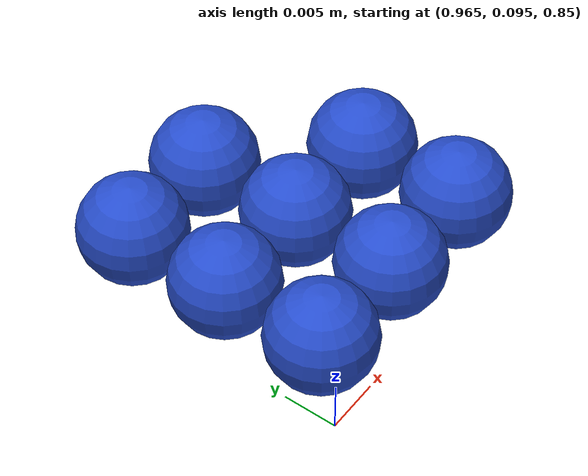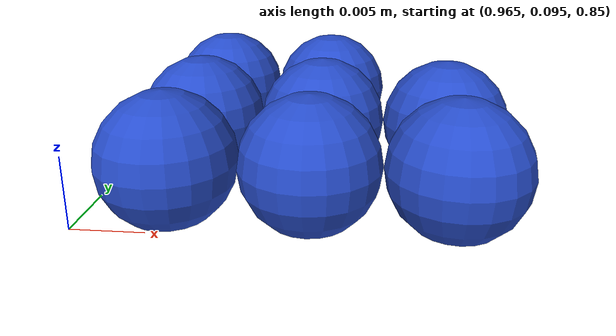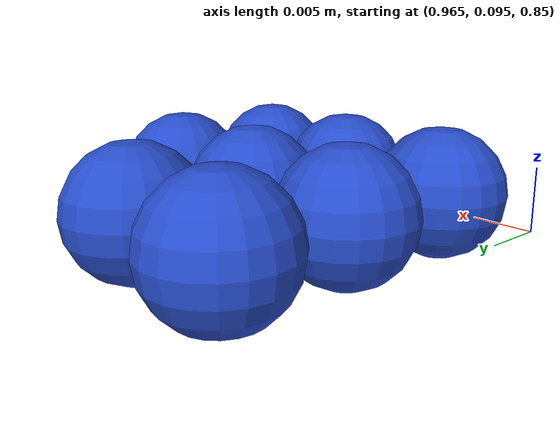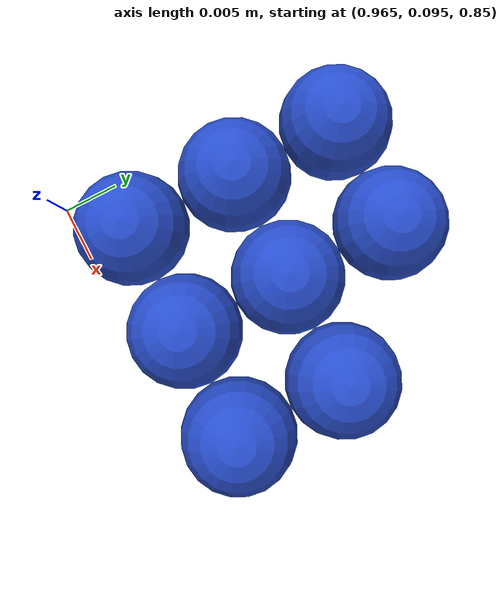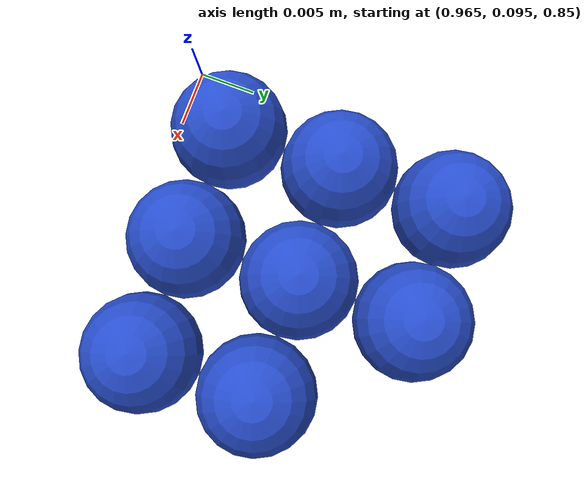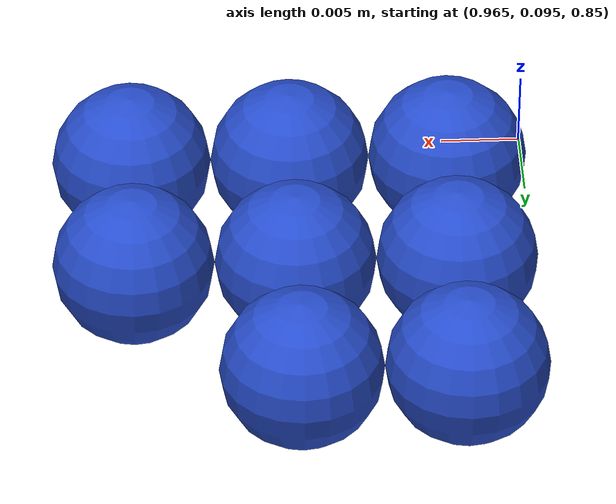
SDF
<sdf version="1.4">
 <world name="default">
  <include><uri>model://ground_plane</uri></include>
  <include><uri>model://sun</uri></include>
  <model name="ball_bearing_2">
   <link name="link">
    <pose>0 0 0.003 0 0 0</pose>
    <inertial>
     <mass>0.0011</mass>
     <inertia>
      <ixx>3.96e-09</ixx>
      <ixy>0</ixy>
      <ixz>0</ixz>
      <iyy>3.96e-09</iyy>
      <iyz>0</iyz>
      <izz>3.96e-09</izz>
     </inertia>
    </inertial>
    <collision name="collision">
     <geometry><sphere><radius>0.005</radius></sphere></geometry>
     <surface><contact><ode><max_vel>0.1</max_vel><min_depth>0.0001</min_depth></ode></contact></surface>
    </collision>
    <visual name="visual">
     <geometry><sphere><radius>0.005</radius></sphere></geometry>
     <material>
      <script><uri>file://media/materials/scripts/gazebo.material</uri><name>Gazebo/Blue</name></script>
     </material>
    </visual>
    <velocity_decay><linear>0</linear><angular>0.005</angular></velocity_decay>
   </link>
   <pose>0.97 0.1 0.85 0.0 0.0 0.0</pose>
  </model>
  <model name="ball_bearing_3">
   <link name="link">
    <pose>0 0 0.003 0 0 0</pose>
    <inertial>
     <mass>0.0011</mass>
     <inertia>
      <ixx>3.96e-09</ixx>
      <ixy>0</ixy>
      <ixz>0</ixz>
      <iyy>3.96e-09</iyy>
      <iyz>0</iyz>
      <izz>3.96e-09</izz>
     </inertia>
    </inertial>
    <collision name="collision">
     <geometry><sphere><radius>0.005</radius></sphere></geometry>
     <surface><contact><ode><max_vel>0.1</max_vel><min_depth>0.0001</min_depth></ode></contact></surface>
    </collision>
    <visual name="visual">
     <geometry><sphere><radius>0.005</radius></sphere></geometry>
     <material>
      <script><uri>file://media/materials/scripts/gazebo.material</uri><name>Gazebo/Blue</name></script>
     </material>
    </visual>
    <velocity_decay><linear>0</linear><angular>0.005</angular></velocity_decay>
   </link>
   <pose>0.98 0.1 0.85 0.0 0.0 0.0</pose>
  </model>
  <model name="ball_bearing_4">
   <link name="link">
    <pose>0 0 0.003 0 0 0</pose>
    <inertial>
     <mass>0.0011</mass>
     <inertia>
      <ixx>3.96e-09</ixx>
      <ixy>0</ixy>
      <ixz>0</ixz>
      <iyy>3.96e-09</iyy>
      <iyz>0</iyz>
      <izz>3.96e-09</izz>
     </inertia>
    </inertial>
    <collision name="collision">
     <geometry><sphere><radius>0.005</radius></sphere></geometry>
     <surface><contact><ode><max_vel>0.1</max_vel><min_depth>0.0001</min_depth></ode></contact></surface>
    </collision>
    <visual name="visual">
     <geometry><sphere><radius>0.005</radius></sphere></geometry>
     <material>
      <script><uri>file://media/materials/scripts/gazebo.material</uri><name>Gazebo/Blue</name></script>
     </material>
    </visual>
    <velocity_decay><linear>0</linear><angular>0.005</angular></velocity_decay>
   </link>
   <pose>0.99 0.1 0.85 0.0 0.0 0.0</pose>
  </model>
  <model name="ball_bearing_12">
   <link name="link">
    <pose>0 0 0.003 0 0 0</pose>
    <inertial>
     <mass>0.0011</mass>
     <inertia>
      <ixx>3.96e-09</ixx>
      <ixy>0</ixy>
      <ixz>0</ixz>
      <iyy>3.96e-09</iyy>
      <iyz>0</iyz>
      <izz>3.96e-09</izz>
     </inertia>
    </inertial>
    <collision name="collision">
     <geometry><sphere><radius>0.005</radius></sphere></geometry>
     <surface><contact><ode><max_vel>0.1</max_vel><min_depth>0.0001</min_depth></ode></contact></surface>
    </collision>
    <visual name="visual">
     <geometry><sphere><radius>0.005</radius></sphere></geometry>
     <material>
      <script><uri>file://media/materials/scripts/gazebo.material</uri><name>Gazebo/Blue</name></script>
     </material>
    </visual>
    <velocity_decay><linear>0</linear><angular>0.005</angular></velocity_decay>
   </link>
   <pose>0.97 0.11 0.85 0.0 0.0 0.0</pose>
  </model>
  <model name="ball_bearing_13">
   <link name="link">
    <pose>0 0 0.003 0 0 0</pose>
    <inertial>
     <mass>0.0011</mass>
     <inertia>
      <ixx>3.96e-09</ixx>
      <ixy>0</ixy>
      <ixz>0</ixz>
      <iyy>3.96e-09</iyy>
      <iyz>0</iyz>
      <izz>3.96e-09</izz>
     </inertia>
    </inertial>
    <collision name="collision">
     <geometry><sphere><radius>0.005</radius></sphere></geometry>
     <surface><contact><ode><max_vel>0.1</max_vel><min_depth>0.0001</min_depth></ode></contact></surface>
    </collision>
    <visual name="visual">
     <geometry><sphere><radius>0.005</radius></sphere></geometry>
     <material>
      <script><uri>file://media/materials/scripts/gazebo.material</uri><name>Gazebo/Blue</name></script>
     </material>
    </visual>
    <velocity_decay><linear>0</linear><angular>0.005</angular></velocity_decay>
   </link>
   <pose>0.98 0.11 0.85 0.0 0.0 0.0</pose>
  </model>
  <model name="ball_bearing_14">
   <link name="link">
    <pose>0 0 0.003 0 0 0</pose>
    <inertial>
     <mass>0.0011</mass>
     <inertia>
      <ixx>3.96e-09</ixx>
      <ixy>0</ixy>
      <ixz>0</ixz>
      <iyy>3.96e-09</iyy>
      <iyz>0</iyz>
      <izz>3.96e-09</izz>
     </inertia>
    </inertial>
    <collision name="collision">
     <geometry><sphere><radius>0.005</radius></sphere></geometry>
     <surface><contact><ode><max_vel>0.1</max_vel><min_depth>0.0001</min_depth></ode></contact></surface>
    </collision>
    <visual name="visual">
     <geometry><sphere><radius>0.005</radius></sphere></geometry>
     <material>
      <script><uri>file://media/materials/scripts/gazebo.material</uri><name>Gazebo/Blue</name></script>
     </material>
    </visual>
    <velocity_decay><linear>0</linear><angular>0.005</angular></velocity_decay>
   </link>
   <pose>0.99 0.11 0.85 0.0 0.0 0.0</pose>
  </model>
  <model name="ball_bearing_22">
   <link name="link">
    <pose>0 0 0.003 0 0 0</pose>
    <inertial>
     <mass>0.0011</mass>
     <inertia>
      <ixx>3.96e-09</ixx>
      <ixy>0</ixy>
      <ixz>0</ixz>
      <iyy>3.96e-09</iyy>
      <iyz>0</iyz>
      <izz>3.96e-09</izz>
     </inertia>
    </inertial>
    <collision name="collision">
     <geometry><sphere><radius>0.005</radius></sphere></geometry>
     <surface><contact><ode><max_vel>0.1</max_vel><min_depth>0.0001</min_depth></ode></contact></surface>
    </collision>
    <visual name="visual">
     <geometry><sphere><radius>0.005</radius></sphere></geometry>
     <material>
      <script><uri>file://media/materials/scripts/gazebo.material</uri><name>Gazebo/Blue</name></script>
     </material>
    </visual>
    <velocity_decay><linear>0</linear><angular>0.005</angular></velocity_decay>
   </link>
   <pose>0.97 0.12 0.85 0.0 0.0 0.0</pose>
  </model>
  <model name="ball_bearing_23">
   <link name="link">
    <pose>0 0 0.003 0 0 0</pose>
    <inertial>
     <mass>0.0011</mass>
     <inertia>
      <ixx>3.96e-09</ixx>
      <ixy>0</ixy>
      <ixz>0</ixz>
      <iyy>3.96e-09</iyy>
      <iyz>0</iyz>
      <izz>3.96e-09</izz>
     </inertia>
    </inertial>
    <collision name="collision">
     <geometry><sphere><radius>0.005</radius></sphere></geometry>
     <surface><contact><ode><max_vel>0.1</max_vel><min_depth>0.0001</min_depth></ode></contact></surface>
    </collision>
    <visual name="visual">
     <geometry><sphere><radius>0.005</radius></sphere></geometry>
     <material>
      <script><uri>file://media/materials/scripts/gazebo.material</uri><name>Gazebo/Blue</name></script>
     </material>
    </visual>
    <velocity_decay><linear>0</linear><angular>0.005</angular></velocity_decay>
   </link>
   <pose>0.98 0.12 0.85 0.0 0.0 0.0</pose>
  </model>
 </world>
</sdf>
